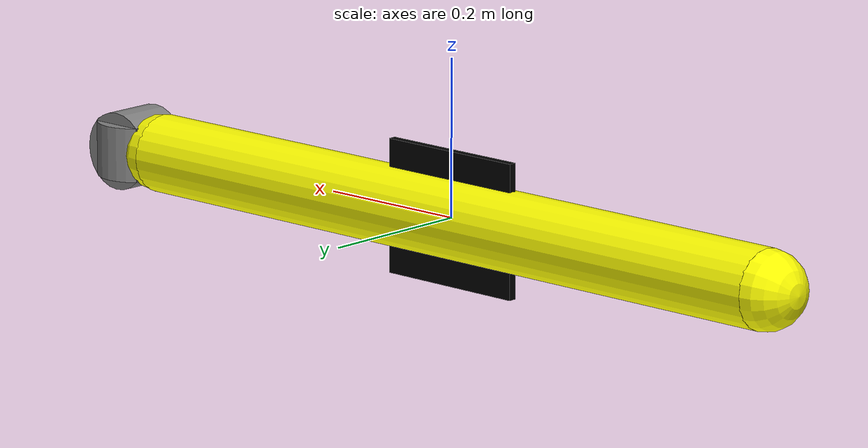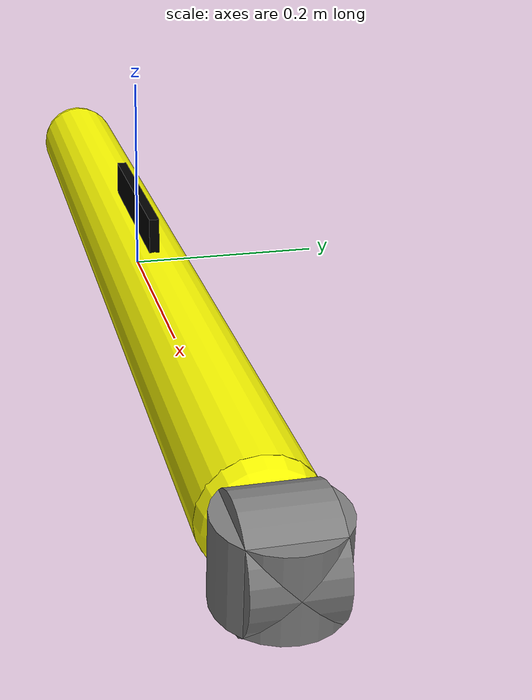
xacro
<?xml version="1.0"?>
<robot xmlns:xacro="http://www.ros.org/wiki/xacro">

    <xacro:property name="top_fin_length" value="0.2" />
    <xacro:property name="top_fin_width" value="0.01" />
    <xacro:property name="top_fin_height" value="0.05" />
    <xacro:property name="head_radius" value="0.05" />
    <xacro:property name="base_radius" value="0.05" />
    <xacro:property name="base_length" value="1.0" />
    <xacro:property name="propeller_radius" value="0.05" />
    <xacro:property name="propeller_length" value="0.07" />

    <material name="yellow">
        <color rgba="1 1 0 1"/>
    </material>

    <material name="black">
        <color rgba="0 0 0 1"/>
    </material>

    <material name="gray">
        <color rgba="0.5 0.5 0.5 1"/>
    </material>

    <link name="base_link">
        <visual>
            <geometry>
                <cylinder radius="${base_radius}" length="${base_length}" />
            </geometry>
            <origin xyz="0 0 0" rpy="0 ${pi / 2.0} 0"/>  <!-- Gövdeyi yatay yerleştirme -->
            <material name="yellow"/>
        </visual>
        <collision>
            <geometry>
                <cylinder radius="${base_radius}" length="${base_length}" />
            </geometry>
            <origin xyz="0 0 0" rpy="0 ${pi / 2.0} 0"/>

        </collision>

    </link>

    <link name="head_link">
        <visual>
            <geometry>
                <sphere radius="${head_radius}"/>
            </geometry>
            <origin xyz="0 0 0" rpy="0 ${pi / 2.0} 0"/>  <!-- Kafayı yatay yerleştirme -->
            <material name="yellow"/>
        </visual>
        <collision>
            <geometry>
                <sphere radius="${head_radius}"/>
            </geometry>
            <origin xyz="0 0 0" rpy="0 ${pi / 2.0} 0"/>
        </collision>
        <xacro:sphere_inertia m="0.5" r="${head_radius}"
                              xyz="0 0 0" rpy="0 ${pi / 2.0} 0" />
    </link>

    <link name="head_link_1">
        <visual>
            <geometry>
                <sphere radius="${head_radius}"/>
            </geometry>
            <origin xyz="0 0 0" rpy="0 ${pi / 2.0} 0"/>  <!-- Kafayı yatay yerleştirme -->
            <material name="yellow"/>
        </visual>
        <collision>
            <geometry>
                <sphere radius="${head_radius}"/>
            </geometry>
            <origin xyz="0 0 0" rpy="0 ${pi / 2.0} 0"/>
        </collision>
        <xacro:sphere_inertia m="0.5" r="${head_radius}"
                              xyz="0 0 0" rpy="0 ${pi / 2.0} 0" />
    </link>

    <link name="top_fin_link">
        <visual>
            <geometry>
                <box size="${top_fin_length} ${top_fin_width} ${top_fin_height}"/>  <!-- Üst kanat dikey -->
            </geometry>
            <origin xyz="0 0 0" rpy="0 0 0"/>  <!-- Üst kanat konumu -->
            <material name="black"/>
        </visual>
        <collision>
            <geometry>
                <box size="${top_fin_length} ${top_fin_width} ${top_fin_height}"/>  <!-- Üst kanat dikey -->
            </geometry>
            <origin xyz="0 0 0" rpy="0 0 0"/>
        </collision>
        <xacro:box_inertia m="5.0" l="${top_fin_length}" w="${top_fin_width}" h="${top_fin_height}"
                           xyz="0 0 0" rpy="0 0 0" />
    </link>

    <link name="bottom_fin_link">
        <visual>
            <geometry>
                <box size="${top_fin_length} ${top_fin_width} ${top_fin_height}"/>  <!-- Üst kanat dikey -->
            </geometry>
            <origin xyz="0 0 0" rpy="0 0 0"/>  <!-- Üst kanat konumu -->
            <material name="black"/>
        </visual>
        <collision>
            <geometry>
                <box size="${top_fin_length} ${top_fin_width} ${top_fin_height}"/>  <!-- Üst kanat dikey -->
            </geometry>
            <origin xyz="0 0 0" rpy="0 0 0"/>
        </collision>
        <xacro:box_inertia m="5.0" l="${top_fin_length}" w="${top_fin_width}" h="${top_fin_height}"
                           xyz="0 0 0" rpy="0 0 0" />
    </link>

    <link name="propeller_horizontal_link">
        <visual>
            <geometry>
                <cylinder radius="${propeller_radius}" length="${propeller_length}"/>  <!-- Yatay pervane -->
            </geometry>
            <origin xyz="0.05 0 0" rpy="0 0 ${pi / 2.0}"/>  <!-- Yatay pervane konumu ve oryantasyonu -->
            <material name="gray"/>
        </visual>
        <collision>
            <geometry>
                <cylinder radius="${propeller_radius}" length="${propeller_length}"/>  <!-- Yatay pervane -->
            </geometry>
            <origin xyz="0.05 0 0" rpy="0 0 ${pi / 2.0}"/>
        </collision>
        <xacro:cylinder_inertia m="1.0" r="${propeller_radius}" h="${propeller_length}"
                                    xyz="0.05 0 0" rpy="0 0 ${pi / 2.0}" />
    </link>

    <link name="propeller_vertical_link">
        <visual>
            <geometry>
                <cylinder radius="${propeller_radius}" length="${propeller_length}"/>  <!-- Yatay pervane -->
            </geometry>
            <origin xyz="0.05 0 0" rpy="${pi / 2.0} 0 0 "/>  <!-- Yatay pervane konumu ve oryantasyonu -->
            <material name="gray"/>
        </visual>
        <collision>
            <geometry>
                <cylinder radius="${propeller_radius}" length="${propeller_length}"/>  <!-- Yatay pervane -->
            </geometry>
            <origin xyz="0.05 0 0" rpy="${pi / 2.0} 0 0 "/>
        </collision>
        <xacro:cylinder_inertia m="1.0" r="${propeller_radius}" h="${propeller_length}"
                                    xyz="0.05 0 0" rpy="${pi / 2.0} 0 0 " />
    </link>

    <joint name="base_head_joint" type="fixed">
        <parent link="base_link"/>
        <child link="head_link"/>
        <origin xyz="0.5 0 0" rpy="0 0 0"/>  <!-- Bağlantı noktası -->
    </joint>

    <joint name="base_head_1_joint" type="fixed">
        <parent link="base_link"/>
        <child link="head_link_1"/>
        <origin xyz="-0.5 0 0" rpy="0 0 0"/>  <!-- Bağlantı noktası -->
    </joint>

    <joint name="top_fin_joint" type="fixed">
        <parent link="base_link"/>
        <child link="top_fin_link"/>
        <origin xyz="0 0 0.06" rpy="0 0 0"/>  <!-- Üst kanat bağlantı noktası -->
    </joint>

    <joint name="bottom_fin_joint" type="fixed">
        <parent link="base_link"/>
        <child link="bottom_fin_link"/>
        <origin xyz="0 0 -0.06" rpy="0 0 0"/>  <!-- Alt kanat bağlantı noktası -->
    </joint>

    <joint name="propeller_horizontal_joint" type="fixed">
        <parent link="head_link"/>
        <child link="propeller_horizontal_link"/>
        <origin xyz="0 0 0" rpy="0 0 0"/>  <!-- Yatay pervane bağlantı noktası -->
    </joint>

    <joint name="propeller_vertical_joint" type="fixed">
        <parent link="head_link"/>
        <child link="propeller_vertical_link"/>
        <origin xyz="0 0 0" rpy="0 0 0"/>  <!-- Dikey pervane bağlantı noktası -->
    </joint>

</robot>
